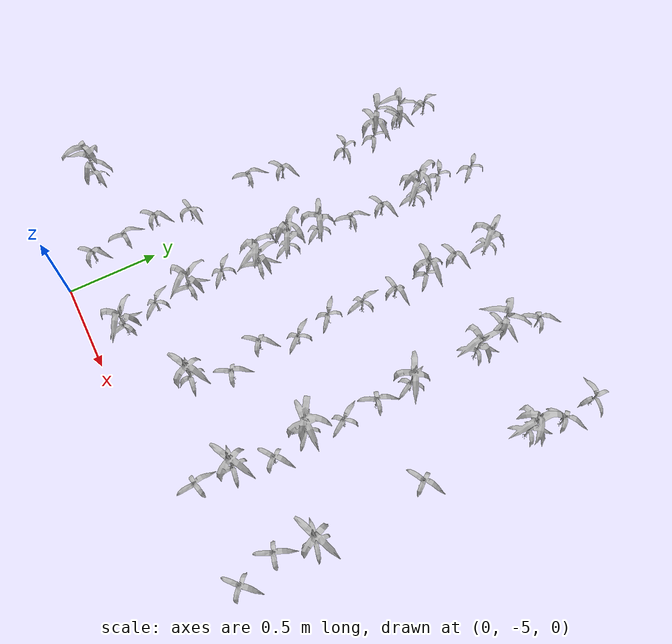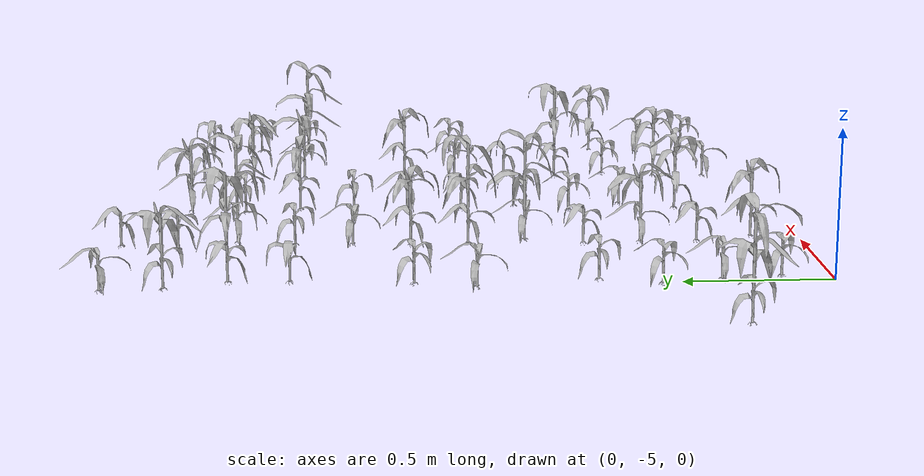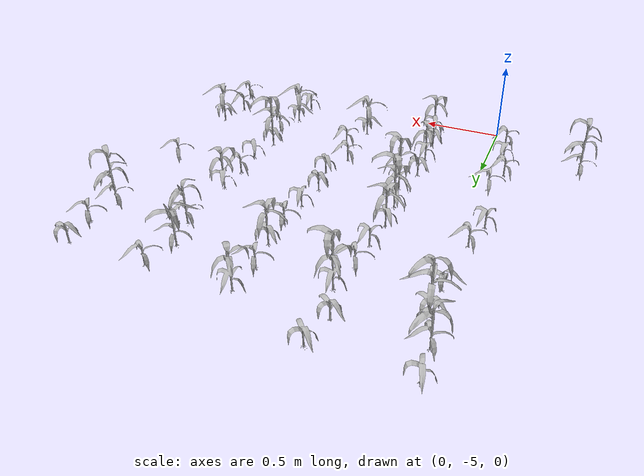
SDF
<sdf version="1.7">
 <world name="default">
  <model name="maize_-0.5794698130621695_-4.6049999999999995">
   <static>1</static>
   <link name="link">
    <inertial>
     <mass>0.2</mass>
     <inertia>
      <ixx>0.166667</ixx>
      <ixy>0</ixy>
      <ixz>0</ixz>
      <iyy>0.166667</iyy>
      <iyz>0</iyz>
      <izz>0.166667</izz>
     </inertia>
    </inertial>
    <collision name="collision">
     <geometry><mesh><uri>model://corn_5/meshes/corn.dae</uri><scale>0.25 0.25 0.25</scale></mesh></geometry>
     <surface>
      <friction><ode><mu>0</mu><mu2>0</mu2></ode></friction>
      <contact><ode><kp>0</kp><kd>0</kd><max_vel>0</max_vel><min_depth>0.002</min_depth></ode></contact>
     </surface>
    </collision>
    <visual name="visual">
     <geometry><mesh><uri>model://corn_5/meshes/corn.dae</uri><scale>0.25 0.25 0.25</scale></mesh></geometry>
    </visual>
    <velocity_decay><linear>0</linear><angular>0</angular></velocity_decay>
   </link>
   <pose>-0.57947 -4.605 0.05 0 -0 0.226514</pose>
  </model>
  <model name="maize_-0.08947248163694532_-4.8">
   <static>1</static>
   <link name="link">
    <inertial>
     <mass>0.2</mass>
     <inertia>
      <ixx>0.166667</ixx>
      <ixy>0</ixy>
      <ixz>0</ixz>
      <iyy>0.166667</iyy>
      <iyz>0</iyz>
      <izz>0.166667</izz>
     </inertia>
    </inertial>
    <collision name="collision">
     <geometry><mesh><uri>model://corn_3/meshes/corn.dae</uri><scale>0.25 0.25 0.25</scale></mesh></geometry>
     <surface>
      <friction><ode><mu>0</mu><mu2>0</mu2></ode></friction>
      <contact><ode><kp>0</kp><kd>0</kd><max_vel>0</max_vel><min_depth>0.002</min_depth></ode></contact>
     </surface>
    </collision>
    <visual name="visual">
     <geometry><mesh><uri>model://corn_3/meshes/corn.dae</uri><scale>0.25 0.25 0.25</scale></mesh></geometry>
    </visual>
    <velocity_decay><linear>0</linear><angular>0</angular></velocity_decay>
   </link>
   <pose>-0.089472 -4.8 0.05 0 -0 0.856689</pose>
  </model>
  <model name="maize_-0.11369995259795779_-4.6049999999999995">
   <static>1</static>
   <link name="link">
    <inertial>
     <mass>0.2</mass>
     <inertia>
      <ixx>0.166667</ixx>
      <ixy>0</ixy>
      <ixz>0</ixz>
      <iyy>0.166667</iyy>
      <iyz>0</iyz>
      <izz>0.166667</izz>
     </inertia>
    </inertial>
    <collision name="collision">
     <geometry><mesh><uri>model://corn_3/meshes/corn.dae</uri><scale>0.25 0.25 0.25</scale></mesh></geometry>
     <surface>
      <friction><ode><mu>0</mu><mu2>0</mu2></ode></friction>
      <contact><ode><kp>0</kp><kd>0</kd><max_vel>0</max_vel><min_depth>0.002</min_depth></ode></contact>
     </surface>
    </collision>
    <visual name="visual">
     <geometry><mesh><uri>model://corn_3/meshes/corn.dae</uri><scale>0.25 0.25 0.25</scale></mesh></geometry>
    </visual>
    <velocity_decay><linear>0</linear><angular>0</angular></velocity_decay>
   </link>
   <pose>-0.1137 -4.605 0.05 0 -0 1.52958</pose>
  </model>
  <model name="maize_-0.15480909226453513_-4.41">
   <static>1</static>
   <link name="link">
    <inertial>
     <mass>0.2</mass>
     <inertia>
      <ixx>0.166667</ixx>
      <ixy>0</ixy>
      <ixz>0</ixz>
      <iyy>0.166667</iyy>
      <iyz>0</iyz>
      <izz>0.166667</izz>
     </inertia>
    </inertial>
    <collision name="collision">
     <geometry><mesh><uri>model://corn_3/meshes/corn.dae</uri><scale>0.25 0.25 0.25</scale></mesh></geometry>
     <surface>
      <friction><ode><mu>0</mu><mu2>0</mu2></ode></friction>
      <contact><ode><kp>0</kp><kd>0</kd><max_vel>0</max_vel><min_depth>0.002</min_depth></ode></contact>
     </surface>
    </collision>
    <visual name="visual">
     <geometry><mesh><uri>model://corn_3/meshes/corn.dae</uri><scale>0.25 0.25 0.25</scale></mesh></geometry>
    </visual>
    <velocity_decay><linear>0</linear><angular>0</angular></velocity_decay>
   </link>
   <pose>-0.154809 -4.41 0.05 0 -0 0.833471</pose>
  </model>
  <model name="maize_-0.09893499277880449_-4.215">
   <static>1</static>
   <link name="link">
    <inertial>
     <mass>0.2</mass>
     <inertia>
      <ixx>0.166667</ixx>
      <ixy>0</ixy>
      <ixz>0</ixz>
      <iyy>0.166667</iyy>
      <iyz>0</iyz>
      <izz>0.166667</izz>
     </inertia>
    </inertial>
    <collision name="collision">
     <geometry><mesh><uri>model://corn_3/meshes/corn.dae</uri><scale>0.25 0.25 0.25</scale></mesh></geometry>
     <surface>
      <friction><ode><mu>0</mu><mu2>0</mu2></ode></friction>
      <contact><ode><kp>0</kp><kd>0</kd><max_vel>0</max_vel><min_depth>0.002</min_depth></ode></contact>
     </surface>
    </collision>
    <visual name="visual">
     <geometry><mesh><uri>model://corn_3/meshes/corn.dae</uri><scale>0.25 0.25 0.25</scale></mesh></geometry>
    </visual>
    <velocity_decay><linear>0</linear><angular>0</angular></velocity_decay>
   </link>
   <pose>-0.098935 -4.215 0.05 0 -0 0.241516</pose>
  </model>
  <model name="maize_-0.16683589748353803_-3.8249999999999997">
   <static>1</static>
   <link name="link">
    <inertial>
     <mass>0.2</mass>
     <inertia>
      <ixx>0.166667</ixx>
      <ixy>0</ixy>
      <ixz>0</ixz>
      <iyy>0.166667</iyy>
      <iyz>0</iyz>
      <izz>0.166667</izz>
     </inertia>
    </inertial>
    <collision name="collision">
     <geometry><mesh><uri>model://corn_3/meshes/corn.dae</uri><scale>0.25 0.25 0.25</scale></mesh></geometry>
     <surface>
      <friction><ode><mu>0</mu><mu2>0</mu2></ode></friction>
      <contact><ode><kp>0</kp><kd>0</kd><max_vel>0</max_vel><min_depth>0.002</min_depth></ode></contact>
     </surface>
    </collision>
    <visual name="visual">
     <geometry><mesh><uri>model://corn_3/meshes/corn.dae</uri><scale>0.25 0.25 0.25</scale></mesh></geometry>
    </visual>
    <velocity_decay><linear>0</linear><angular>0</angular></velocity_decay>
   </link>
   <pose>-0.166836 -3.825 0.05 0 -0 1.34205</pose>
  </model>
  <model name="maize_-0.12233010074013884_-3.63">
   <static>1</static>
   <link name="link">
    <inertial>
     <mass>0.2</mass>
     <inertia>
      <ixx>0.166667</ixx>
      <ixy>0</ixy>
      <ixz>0</ixz>
      <iyy>0.166667</iyy>
      <iyz>0</iyz>
      <izz>0.166667</izz>
     </inertia>
    </inertial>
    <collision name="collision">
     <geometry><mesh><uri>model://corn_3/meshes/corn.dae</uri><scale>0.25 0.25 0.25</scale></mesh></geometry>
     <surface>
      <friction><ode><mu>0</mu><mu2>0</mu2></ode></friction>
      <contact><ode><kp>0</kp><kd>0</kd><max_vel>0</max_vel><min_depth>0.002</min_depth></ode></contact>
     </surface>
    </collision>
    <visual name="visual">
     <geometry><mesh><uri>model://corn_3/meshes/corn.dae</uri><scale>0.25 0.25 0.25</scale></mesh></geometry>
    </visual>
    <velocity_decay><linear>0</linear><angular>0</angular></velocity_decay>
   </link>
   <pose>-0.12233 -3.63 0.05 0 -0 0.638561</pose>
  </model>
  <model name="maize_-0.08624315046598344_-3.2399999999999998">
   <static>1</static>
   <link name="link">
    <inertial>
     <mass>0.2</mass>
     <inertia>
      <ixx>0.166667</ixx>
      <ixy>0</ixy>
      <ixz>0</ixz>
      <iyy>0.166667</iyy>
      <iyz>0</iyz>
      <izz>0.166667</izz>
     </inertia>
    </inertial>
    <collision name="collision">
     <geometry><mesh><uri>model://corn_3/meshes/corn.dae</uri><scale>0.25 0.25 0.25</scale></mesh></geometry>
     <surface>
      <friction><ode><mu>0</mu><mu2>0</mu2></ode></friction>
      <contact><ode><kp>0</kp><kd>0</kd><max_vel>0</max_vel><min_depth>0.002</min_depth></ode></contact>
     </surface>
    </collision>
    <visual name="visual">
     <geometry><mesh><uri>model://corn_3/meshes/corn.dae</uri><scale>0.25 0.25 0.25</scale></mesh></geometry>
    </visual>
    <velocity_decay><linear>0</linear><angular>0</angular></velocity_decay>
   </link>
   <pose>-0.086243 -3.24 0.05 0 -0 3.11253</pose>
  </model>
  <model name="maize_-0.0808394201157531_-3.045">
   <static>1</static>
   <link name="link">
    <inertial>
     <mass>0.2</mass>
     <inertia>
      <ixx>0.166667</ixx>
      <ixy>0</ixy>
      <ixz>0</ixz>
      <iyy>0.166667</iyy>
      <iyz>0</iyz>
      <izz>0.166667</izz>
     </inertia>
    </inertial>
    <collision name="collision">
     <geometry><mesh><uri>model://corn_5/meshes/corn.dae</uri><scale>0.25 0.25 0.25</scale></mesh></geometry>
     <surface>
      <friction><ode><mu>0</mu><mu2>0</mu2></ode></friction>
      <contact><ode><kp>0</kp><kd>0</kd><max_vel>0</max_vel><min_depth>0.002</min_depth></ode></contact>
     </surface>
    </collision>
    <visual name="visual">
     <geometry><mesh><uri>model://corn_5/meshes/corn.dae</uri><scale>0.25 0.25 0.25</scale></mesh></geometry>
    </visual>
    <velocity_decay><linear>0</linear><angular>0</angular></velocity_decay>
   </link>
   <pose>-0.080839 -3.045 0.05 0 -0 2.70748</pose>
  </model>
  <model name="maize_-0.14278858493482638_-2.8499999999999996">
   <static>1</static>
   <link name="link">
    <inertial>
     <mass>0.2</mass>
     <inertia>
      <ixx>0.166667</ixx>
      <ixy>0</ixy>
      <ixz>0</ixz>
      <iyy>0.166667</iyy>
      <iyz>0</iyz>
      <izz>0.166667</izz>
     </inertia>
    </inertial>
    <collision name="collision">
     <geometry><mesh><uri>model://corn_4/meshes/corn.dae</uri><scale>0.25 0.25 0.25</scale></mesh></geometry>
     <surface>
      <friction><ode><mu>0</mu><mu2>0</mu2></ode></friction>
      <contact><ode><kp>0</kp><kd>0</kd><max_vel>0</max_vel><min_depth>0.002</min_depth></ode></contact>
     </surface>
    </collision>
    <visual name="visual">
     <geometry><mesh><uri>model://corn_4/meshes/corn.dae</uri><scale>0.25 0.25 0.25</scale></mesh></geometry>
    </visual>
    <velocity_decay><linear>0</linear><angular>0</angular></velocity_decay>
   </link>
   <pose>-0.142789 -2.85 0.05 0 -0 0.538339</pose>
  </model>
  <model name="maize_-0.1576907734598361_-2.655">
   <static>1</static>
   <link name="link">
    <inertial>
     <mass>0.2</mass>
     <inertia>
      <ixx>0.166667</ixx>
      <ixy>0</ixy>
      <ixz>0</ixz>
      <iyy>0.166667</iyy>
      <iyz>0</iyz>
      <izz>0.166667</izz>
     </inertia>
    </inertial>
    <collision name="collision">
     <geometry><mesh><uri>model://corn_3/meshes/corn.dae</uri><scale>0.25 0.25 0.25</scale></mesh></geometry>
     <surface>
      <friction><ode><mu>0</mu><mu2>0</mu2></ode></friction>
      <contact><ode><kp>0</kp><kd>0</kd><max_vel>0</max_vel><min_depth>0.002</min_depth></ode></contact>
     </surface>
    </collision>
    <visual name="visual">
     <geometry><mesh><uri>model://corn_3/meshes/corn.dae</uri><scale>0.25 0.25 0.25</scale></mesh></geometry>
    </visual>
    <velocity_decay><linear>0</linear><angular>0</angular></velocity_decay>
   </link>
   <pose>-0.157691 -2.655 0.05 0 -0 1.91088</pose>
  </model>
  <model name="maize_0.4052160722732578_-4.8">
   <static>1</static>
   <link name="link">
    <inertial>
     <mass>0.2</mass>
     <inertia>
      <ixx>0.166667</ixx>
      <ixy>0</ixy>
      <ixz>0</ixz>
      <iyy>0.166667</iyy>
      <iyz>0</iyz>
      <izz>0.166667</izz>
     </inertia>
    </inertial>
    <collision name="collision">
     <geometry><mesh><uri>model://corn_4/meshes/corn.dae</uri><scale>0.25 0.25 0.25</scale></mesh></geometry>
     <surface>
      <friction><ode><mu>0</mu><mu2>0</mu2></ode></friction>
      <contact><ode><kp>0</kp><kd>0</kd><max_vel>0</max_vel><min_depth>0.002</min_depth></ode></contact>
     </surface>
    </collision>
    <visual name="visual">
     <geometry><mesh><uri>model://corn_4/meshes/corn.dae</uri><scale>0.25 0.25 0.25</scale></mesh></geometry>
    </visual>
    <velocity_decay><linear>0</linear><angular>0</angular></velocity_decay>
   </link>
   <pose>0.405216 -4.8 0.05 0 -0 1.9423</pose>
  </model>
  <model name="maize_0.35607902720396356_-4.6049999999999995">
   <static>1</static>
   <link name="link">
    <inertial>
     <mass>0.2</mass>
     <inertia>
      <ixx>0.166667</ixx>
      <ixy>0</ixy>
      <ixz>0</ixz>
      <iyy>0.166667</iyy>
      <iyz>0</iyz>
      <izz>0.166667</izz>
     </inertia>
    </inertial>
    <collision name="collision">
     <geometry><mesh><uri>model://corn_3/meshes/corn.dae</uri><scale>0.25 0.25 0.25</scale></mesh></geometry>
     <surface>
      <friction><ode><mu>0</mu><mu2>0</mu2></ode></friction>
      <contact><ode><kp>0</kp><kd>0</kd><max_vel>0</max_vel><min_depth>0.002</min_depth></ode></contact>
     </surface>
    </collision>
    <visual name="visual">
     <geometry><mesh><uri>model://corn_3/meshes/corn.dae</uri><scale>0.25 0.25 0.25</scale></mesh></geometry>
    </visual>
    <velocity_decay><linear>0</linear><angular>0</angular></velocity_decay>
   </link>
   <pose>0.356079 -4.605 0.05 0 -0 2.32918</pose>
  </model>
  <model name="maize_0.35064531900201473_-4.41">
   <static>1</static>
   <link name="link">
    <inertial>
     <mass>0.2</mass>
     <inertia>
      <ixx>0.166667</ixx>
      <ixy>0</ixy>
      <ixz>0</ixz>
      <iyy>0.166667</iyy>
      <iyz>0</iyz>
      <izz>0.166667</izz>
     </inertia>
    </inertial>
    <collision name="collision">
     <geometry><mesh><uri>model://corn_4/meshes/corn.dae</uri><scale>0.25 0.25 0.25</scale></mesh></geometry>
     <surface>
      <friction><ode><mu>0</mu><mu2>0</mu2></ode></friction>
      <contact><ode><kp>0</kp><kd>0</kd><max_vel>0</max_vel><min_depth>0.002</min_depth></ode></contact>
     </surface>
    </collision>
    <visual name="visual">
     <geometry><mesh><uri>model://corn_4/meshes/corn.dae</uri><scale>0.25 0.25 0.25</scale></mesh></geometry>
    </visual>
    <velocity_decay><linear>0</linear><angular>0</angular></velocity_decay>
   </link>
   <pose>0.350645 -4.41 0.05 0 -0 1.54455</pose>
  </model>
  <model name="maize_0.3405834351974031_-4.215">
   <static>1</static>
   <link name="link">
    <inertial>
     <mass>0.2</mass>
     <inertia>
      <ixx>0.166667</ixx>
      <ixy>0</ixy>
      <ixz>0</ixz>
      <iyy>0.166667</iyy>
      <iyz>0</iyz>
      <izz>0.166667</izz>
     </inertia>
    </inertial>
    <collision name="collision">
     <geometry><mesh><uri>model://corn_3/meshes/corn.dae</uri><scale>0.25 0.25 0.25</scale></mesh></geometry>
     <surface>
      <friction><ode><mu>0</mu><mu2>0</mu2></ode></friction>
      <contact><ode><kp>0</kp><kd>0</kd><max_vel>0</max_vel><min_depth>0.002</min_depth></ode></contact>
     </surface>
    </collision>
    <visual name="visual">
     <geometry><mesh><uri>model://corn_3/meshes/corn.dae</uri><scale>0.25 0.25 0.25</scale></mesh></geometry>
    </visual>
    <velocity_decay><linear>0</linear><angular>0</angular></velocity_decay>
   </link>
   <pose>0.340583 -4.215 0.05 0 -0 2.492</pose>
  </model>
  <model name="maize_0.39697595780651246_-4.02">
   <static>1</static>
   <link name="link">
    <inertial>
     <mass>0.2</mass>
     <inertia>
      <ixx>0.166667</ixx>
      <ixy>0</ixy>
      <ixz>0</ixz>
      <iyy>0.166667</iyy>
      <iyz>0</iyz>
      <izz>0.166667</izz>
     </inertia>
    </inertial>
    <collision name="collision">
     <geometry><mesh><uri>model://corn_5/meshes/corn.dae</uri><scale>0.25 0.25 0.25</scale></mesh></geometry>
     <surface>
      <friction><ode><mu>0</mu><mu2>0</mu2></ode></friction>
      <contact><ode><kp>0</kp><kd>0</kd><max_vel>0</max_vel><min_depth>0.002</min_depth></ode></contact>
     </surface>
    </collision>
    <visual name="visual">
     <geometry><mesh><uri>model://corn_5/meshes/corn.dae</uri><scale>0.25 0.25 0.25</scale></mesh></geometry>
    </visual>
    <velocity_decay><linear>0</linear><angular>0</angular></velocity_decay>
   </link>
   <pose>0.396976 -4.02 0.05 0 -0 1.28195</pose>
  </model>
  <model name="maize_0.3591632939717429_-3.8249999999999997">
   <static>1</static>
   <link name="link">
    <inertial>
     <mass>0.2</mass>
     <inertia>
      <ixx>0.166667</ixx>
      <ixy>0</ixy>
      <ixz>0</ixz>
      <iyy>0.166667</iyy>
      <iyz>0</iyz>
      <izz>0.166667</izz>
     </inertia>
    </inertial>
    <collision name="collision">
     <geometry><mesh><uri>model://corn_5/meshes/corn.dae</uri><scale>0.25 0.25 0.25</scale></mesh></geometry>
     <surface>
      <friction><ode><mu>0</mu><mu2>0</mu2></ode></friction>
      <contact><ode><kp>0</kp><kd>0</kd><max_vel>0</max_vel><min_depth>0.002</min_depth></ode></contact>
     </surface>
    </collision>
    <visual name="visual">
     <geometry><mesh><uri>model://corn_5/meshes/corn.dae</uri><scale>0.25 0.25 0.25</scale></mesh></geometry>
    </visual>
    <velocity_decay><linear>0</linear><angular>0</angular></velocity_decay>
   </link>
   <pose>0.359163 -3.825 0.05 0 -0 2.06548</pose>
  </model>
  <model name="maize_0.34223553518957534_-3.63">
   <static>1</static>
   <link name="link">
    <inertial>
     <mass>0.2</mass>
     <inertia>
      <ixx>0.166667</ixx>
      <ixy>0</ixy>
      <ixz>0</ixz>
      <iyy>0.166667</iyy>
      <iyz>0</iyz>
      <izz>0.166667</izz>
     </inertia>
    </inertial>
    <collision name="collision">
     <geometry><mesh><uri>model://corn_4/meshes/corn.dae</uri><scale>0.25 0.25 0.25</scale></mesh></geometry>
     <surface>
      <friction><ode><mu>0</mu><mu2>0</mu2></ode></friction>
      <contact><ode><kp>0</kp><kd>0</kd><max_vel>0</max_vel><min_depth>0.002</min_depth></ode></contact>
     </surface>
    </collision>
    <visual name="visual">
     <geometry><mesh><uri>model://corn_4/meshes/corn.dae</uri><scale>0.25 0.25 0.25</scale></mesh></geometry>
    </visual>
    <velocity_decay><linear>0</linear><angular>0</angular></velocity_decay>
   </link>
   <pose>0.342236 -3.63 0.05 0 -0 2.2004</pose>
  </model>
  <model name="maize_0.3617129465408765_-3.4349999999999996">
   <static>1</static>
   <link name="link">
    <inertial>
     <mass>0.2</mass>
     <inertia>
      <ixx>0.166667</ixx>
      <ixy>0</ixy>
      <ixz>0</ixz>
      <iyy>0.166667</iyy>
      <iyz>0</iyz>
      <izz>0.166667</izz>
     </inertia>
    </inertial>
    <collision name="collision">
     <geometry><mesh><uri>model://corn_3/meshes/corn.dae</uri><scale>0.25 0.25 0.25</scale></mesh></geometry>
     <surface>
      <friction><ode><mu>0</mu><mu2>0</mu2></ode></friction>
      <contact><ode><kp>0</kp><kd>0</kd><max_vel>0</max_vel><min_depth>0.002</min_depth></ode></contact>
     </surface>
    </collision>
    <visual name="visual">
     <geometry><mesh><uri>model://corn_3/meshes/corn.dae</uri><scale>0.25 0.25 0.25</scale></mesh></geometry>
    </visual>
    <velocity_decay><linear>0</linear><angular>0</angular></velocity_decay>
   </link>
   <pose>0.361713 -3.435 0.05 0 -0 1.33624</pose>
  </model>
  <model name="maize_0.3660917582938566_-3.2399999999999998">
   <static>1</static>
   <link name="link">
    <inertial>
     <mass>0.2</mass>
     <inertia>
      <ixx>0.166667</ixx>
      <ixy>0</ixy>
      <ixz>0</ixz>
      <iyy>0.166667</iyy>
      <iyz>0</iyz>
      <izz>0.166667</izz>
     </inertia>
    </inertial>
    <collision name="collision">
     <geometry><mesh><uri>model://corn_3/meshes/corn.dae</uri><scale>0.25 0.25 0.25</scale></mesh></geometry>
     <surface>
      <friction><ode><mu>0</mu><mu2>0</mu2></ode></friction>
      <contact><ode><kp>0</kp><kd>0</kd><max_vel>0</max_vel><min_depth>0.002</min_depth></ode></contact>
     </surface>
    </collision>
    <visual name="visual">
     <geometry><mesh><uri>model://corn_3/meshes/corn.dae</uri><scale>0.25 0.25 0.25</scale></mesh></geometry>
    </visual>
    <velocity_decay><linear>0</linear><angular>0</angular></velocity_decay>
   </link>
   <pose>0.366092 -3.24 0.05 0 -0 0.439807</pose>
  </model>
  <model name="maize_0.40253141256624503_-3.045">
   <static>1</static>
   <link name="link">
    <inertial>
     <mass>0.2</mass>
     <inertia>
      <ixx>0.166667</ixx>
      <ixy>0</ixy>
      <ixz>0</ixz>
      <iyy>0.166667</iyy>
      <iyz>0</iyz>
      <izz>0.166667</izz>
     </inertia>
    </inertial>
    <collision name="collision">
     <geometry><mesh><uri>model://corn_5/meshes/corn.dae</uri><scale>0.25 0.25 0.25</scale></mesh></geometry>
     <surface>
      <friction><ode><mu>0</mu><mu2>0</mu2></ode></friction>
      <contact><ode><kp>0</kp><kd>0</kd><max_vel>0</max_vel><min_depth>0.002</min_depth></ode></contact>
     </surface>
    </collision>
    <visual name="visual">
     <geometry><mesh><uri>model://corn_5/meshes/corn.dae</uri><scale>0.25 0.25 0.25</scale></mesh></geometry>
    </visual>
    <velocity_decay><linear>0</linear><angular>0</angular></velocity_decay>
   </link>
   <pose>0.402531 -3.045 0.05 0 -0 1.71098</pose>
  </model>
  <model name="maize_0.33299519488374046_-2.8499999999999996">
   <static>1</static>
   <link name="link">
    <inertial>
     <mass>0.2</mass>
     <inertia>
      <ixx>0.166667</ixx>
      <ixy>0</ixy>
      <ixz>0</ixz>
      <iyy>0.166667</iyy>
      <iyz>0</iyz>
      <izz>0.166667</izz>
     </inertia>
    </inertial>
    <collision name="collision">
     <geometry><mesh><uri>model://corn_3/meshes/corn.dae</uri><scale>0.25 0.25 0.25</scale></mesh></geometry>
     <surface>
      <friction><ode><mu>0</mu><mu2>0</mu2></ode></friction>
      <contact><ode><kp>0</kp><kd>0</kd><max_vel>0</max_vel><min_depth>0.002</min_depth></ode></contact>
     </surface>
    </collision>
    <visual name="visual">
     <geometry><mesh><uri>model://corn_3/meshes/corn.dae</uri><scale>0.25 0.25 0.25</scale></mesh></geometry>
    </visual>
    <velocity_decay><linear>0</linear><angular>0</angular></velocity_decay>
   </link>
   <pose>0.332995 -2.85 0.05 0 -0 2.62345</pose>
  </model>
  <model name="maize_0.37378861474626657_-2.655">
   <static>1</static>
   <link name="link">
    <inertial>
     <mass>0.2</mass>
     <inertia>
      <ixx>0.166667</ixx>
      <ixy>0</ixy>
      <ixz>0</ixz>
      <iyy>0.166667</iyy>
      <iyz>0</iyz>
      <izz>0.166667</izz>
     </inertia>
    </inertial>
    <collision name="collision">
     <geometry><mesh><uri>model://corn_3/meshes/corn.dae</uri><scale>0.25 0.25 0.25</scale></mesh></geometry>
     <surface>
      <friction><ode><mu>0</mu><mu2>0</mu2></ode></friction>
      <contact><ode><kp>0</kp><kd>0</kd><max_vel>0</max_vel><min_depth>0.002</min_depth></ode></contact>
     </surface>
    </collision>
    <visual name="visual">
     <geometry><mesh><uri>model://corn_3/meshes/corn.dae</uri><scale>0.25 0.25 0.25</scale></mesh></geometry>
    </visual>
    <velocity_decay><linear>0</linear><angular>0</angular></velocity_decay>
   </link>
   <pose>0.373789 -2.655 0.05 0 -0 2.4026</pose>
  </model>
  <model name="maize_0.823994894856676_-4.6049999999999995">
   <static>1</static>
   <link name="link">
    <inertial>
     <mass>0.2</mass>
     <inertia>
      <ixx>0.166667</ixx>
      <ixy>0</ixy>
      <ixz>0</ixz>
      <iyy>0.166667</iyy>
      <iyz>0</iyz>
      <izz>0.166667</izz>
     </inertia>
    </inertial>
    <collision name="collision">
     <geometry><mesh><uri>model://corn_4/meshes/corn.dae</uri><scale>0.25 0.25 0.25</scale></mesh></geometry>
     <surface>
      <friction><ode><mu>0</mu><mu2>0</mu2></ode></friction>
      <contact><ode><kp>0</kp><kd>0</kd><max_vel>0</max_vel><min_depth>0.002</min_depth></ode></contact>
     </surface>
    </collision>
    <visual name="visual">
     <geometry><mesh><uri>model://corn_4/meshes/corn.dae</uri><scale>0.25 0.25 0.25</scale></mesh></geometry>
    </visual>
    <velocity_decay><linear>0</linear><angular>0</angular></velocity_decay>
   </link>
   <pose>0.823995 -4.605 0.05 0 -0 3.07718</pose>
  </model>
  <model name="maize_0.8966082899529052_-4.41">
   <static>1</static>
   <link name="link">
    <inertial>
     <mass>0.2</mass>
     <inertia>
      <ixx>0.166667</ixx>
      <ixy>0</ixy>
      <ixz>0</ixz>
      <iyy>0.166667</iyy>
      <iyz>0</iyz>
      <izz>0.166667</izz>
     </inertia>
    </inertial>
    <collision name="collision">
     <geometry><mesh><uri>model://corn_3/meshes/corn.dae</uri><scale>0.25 0.25 0.25</scale></mesh></geometry>
     <surface>
      <friction><ode><mu>0</mu><mu2>0</mu2></ode></friction>
      <contact><ode><kp>0</kp><kd>0</kd><max_vel>0</max_vel><min_depth>0.002</min_depth></ode></contact>
     </surface>
    </collision>
    <visual name="visual">
     <geometry><mesh><uri>model://corn_3/meshes/corn.dae</uri><scale>0.25 0.25 0.25</scale></mesh></geometry>
    </visual>
    <velocity_decay><linear>0</linear><angular>0</angular></velocity_decay>
   </link>
   <pose>0.896608 -4.41 0.05 0 -0 1.1486</pose>
  </model>
  <model name="maize_0.8075794510545363_-4.215">
   <static>1</static>
   <link name="link">
    <inertial>
     <mass>0.2</mass>
     <inertia>
      <ixx>0.166667</ixx>
      <ixy>0</ixy>
      <ixz>0</ixz>
      <iyy>0.166667</iyy>
      <iyz>0</iyz>
      <izz>0.166667</izz>
     </inertia>
    </inertial>
    <collision name="collision">
     <geometry><mesh><uri>model://corn_3/meshes/corn.dae</uri><scale>0.25 0.25 0.25</scale></mesh></geometry>
     <surface>
      <friction><ode><mu>0</mu><mu2>0</mu2></ode></friction>
      <contact><ode><kp>0</kp><kd>0</kd><max_vel>0</max_vel><min_depth>0.002</min_depth></ode></contact>
     </surface>
    </collision>
    <visual name="visual">
     <geometry><mesh><uri>model://corn_3/meshes/corn.dae</uri><scale>0.25 0.25 0.25</scale></mesh></geometry>
    </visual>
    <velocity_decay><linear>0</linear><angular>0</angular></velocity_decay>
   </link>
   <pose>0.807579 -4.215 0.05 0 -0 0.900839</pose>
  </model>
  <model name="maize_0.8754517404091673_-4.02">
   <static>1</static>
   <link name="link">
    <inertial>
     <mass>0.2</mass>
     <inertia>
      <ixx>0.166667</ixx>
      <ixy>0</ixy>
      <ixz>0</ixz>
      <iyy>0.166667</iyy>
      <iyz>0</iyz>
      <izz>0.166667</izz>
     </inertia>
    </inertial>
    <collision name="collision">
     <geometry><mesh><uri>model://corn_3/meshes/corn.dae</uri><scale>0.25 0.25 0.25</scale></mesh></geometry>
     <surface>
      <friction><ode><mu>0</mu><mu2>0</mu2></ode></friction>
      <contact><ode><kp>0</kp><kd>0</kd><max_vel>0</max_vel><min_depth>0.002</min_depth></ode></contact>
     </surface>
    </collision>
    <visual name="visual">
     <geometry><mesh><uri>model://corn_3/meshes/corn.dae</uri><scale>0.25 0.25 0.25</scale></mesh></geometry>
    </visual>
    <velocity_decay><linear>0</linear><angular>0</angular></velocity_decay>
   </link>
   <pose>0.875452 -4.02 0.05 0 -0 2.31869</pose>
  </model>
  <model name="maize_0.8352001727285957_-3.8249999999999997">
   <static>1</static>
   <link name="link">
    <inertial>
     <mass>0.2</mass>
     <inertia>
      <ixx>0.166667</ixx>
      <ixy>0</ixy>
      <ixz>0</ixz>
      <iyy>0.166667</iyy>
      <iyz>0</iyz>
      <izz>0.166667</izz>
     </inertia>
    </inertial>
    <collision name="collision">
     <geometry><mesh><uri>model://corn_3/meshes/corn.dae</uri><scale>0.25 0.25 0.25</scale></mesh></geometry>
     <surface>
      <friction><ode><mu>0</mu><mu2>0</mu2></ode></friction>
      <contact><ode><kp>0</kp><kd>0</kd><max_vel>0</max_vel><min_depth>0.002</min_depth></ode></contact>
     </surface>
    </collision>
    <visual name="visual">
     <geometry><mesh><uri>model://corn_3/meshes/corn.dae</uri><scale>0.25 0.25 0.25</scale></mesh></geometry>
    </visual>
    <velocity_decay><linear>0</linear><angular>0</angular></velocity_decay>
   </link>
   <pose>0.8352 -3.825 0.05 0 -0 2.53669</pose>
  </model>
  <model name="maize_0.8537061088090849_-3.63">
   <static>1</static>
   <link name="link">
    <inertial>
     <mass>0.2</mass>
     <inertia>
      <ixx>0.166667</ixx>
      <ixy>0</ixy>
      <ixz>0</ixz>
      <iyy>0.166667</iyy>
      <iyz>0</iyz>
      <izz>0.166667</izz>
     </inertia>
    </inertial>
    <collision name="collision">
     <geometry><mesh><uri>model://corn_3/meshes/corn.dae</uri><scale>0.25 0.25 0.25</scale></mesh></geometry>
     <surface>
      <friction><ode><mu>0</mu><mu2>0</mu2></ode></friction>
      <contact><ode><kp>0</kp><kd>0</kd><max_vel>0</max_vel><min_depth>0.002</min_depth></ode></contact>
     </surface>
    </collision>
    <visual name="visual">
     <geometry><mesh><uri>model://corn_3/meshes/corn.dae</uri><scale>0.25 0.25 0.25</scale></mesh></geometry>
    </visual>
    <velocity_decay><linear>0</linear><angular>0</angular></velocity_decay>
   </link>
   <pose>0.853706 -3.63 0.05 0 -0 1.8607</pose>
  </model>
  <model name="maize_0.8646862531493678_-3.4349999999999996">
   <static>1</static>
   <link name="link">
    <inertial>
     <mass>0.2</mass>
     <inertia>
      <ixx>0.166667</ixx>
      <ixy>0</ixy>
      <ixz>0</ixz>
      <iyy>0.166667</iyy>
      <iyz>0</iyz>
      <izz>0.166667</izz>
     </inertia>
    </inertial>
    <collision name="collision">
     <geometry><mesh><uri>model://corn_3/meshes/corn.dae</uri><scale>0.25 0.25 0.25</scale></mesh></geometry>
     <surface>
      <friction><ode><mu>0</mu><mu2>0</mu2></ode></friction>
      <contact><ode><kp>0</kp><kd>0</kd><max_vel>0</max_vel><min_depth>0.002</min_depth></ode></contact>
     </surface>
    </collision>
    <visual name="visual">
     <geometry><mesh><uri>model://corn_3/meshes/corn.dae</uri><scale>0.25 0.25 0.25</scale></mesh></geometry>
    </visual>
    <velocity_decay><linear>0</linear><angular>0</angular></velocity_decay>
   </link>
   <pose>0.864686 -3.435 0.05 0 -0 0.200094</pose>
  </model>
  <model name="maize_0.8611459837172941_-3.2399999999999998">
   <static>1</static>
   <link name="link">
    <inertial>
     <mass>0.2</mass>
     <inertia>
      <ixx>0.166667</ixx>
      <ixy>0</ixy>
      <ixz>0</ixz>
      <iyy>0.166667</iyy>
      <iyz>0</iyz>
      <izz>0.166667</izz>
     </inertia>
    </inertial>
    <collision name="collision">
     <geometry><mesh><uri>model://corn_4/meshes/corn.dae</uri><scale>0.25 0.25 0.25</scale></mesh></geometry>
     <surface>
      <friction><ode><mu>0</mu><mu2>0</mu2></ode></friction>
      <contact><ode><kp>0</kp><kd>0</kd><max_vel>0</max_vel><min_depth>0.002</min_depth></ode></contact>
     </surface>
    </collision>
    <visual name="visual">
     <geometry><mesh><uri>model://corn_4/meshes/corn.dae</uri><scale>0.25 0.25 0.25</scale></mesh></geometry>
    </visual>
    <velocity_decay><linear>0</linear><angular>0</angular></velocity_decay>
   </link>
   <pose>0.861146 -3.24 0.05 0 -0 2.51558</pose>
  </model>
  <model name="maize_0.8286604292650397_-3.045">
   <static>1</static>
   <link name="link">
    <inertial>
     <mass>0.2</mass>
     <inertia>
      <ixx>0.166667</ixx>
      <ixy>0</ixy>
      <ixz>0</ixz>
      <iyy>0.166667</iyy>
      <iyz>0</iyz>
      <izz>0.166667</izz>
     </inertia>
    </inertial>
    <collision name="collision">
     <geometry><mesh><uri>model://corn_3/meshes/corn.dae</uri><scale>0.25 0.25 0.25</scale></mesh></geometry>
     <surface>
      <friction><ode><mu>0</mu><mu2>0</mu2></ode></friction>
      <contact><ode><kp>0</kp><kd>0</kd><max_vel>0</max_vel><min_depth>0.002</min_depth></ode></contact>
     </surface>
    </collision>
    <visual name="visual">
     <geometry><mesh><uri>model://corn_3/meshes/corn.dae</uri><scale>0.25 0.25 0.25</scale></mesh></geometry>
    </visual>
    <velocity_decay><linear>0</linear><angular>0</angular></velocity_decay>
   </link>
   <pose>0.82866 -3.045 0.05 0 -0 0.342634</pose>
  </model>
  <model name="maize_0.8489233954027172_-2.8499999999999996">
   <static>1</static>
   <link name="link">
    <inertial>
     <mass>0.2</mass>
     <inertia>
      <ixx>0.166667</ixx>
      <ixy>0</ixy>
      <ixz>0</ixz>
      <iyy>0.166667</iyy>
      <iyz>0</iyz>
      <izz>0.166667</izz>
     </inertia>
    </inertial>
    <collision name="collision">
     <geometry><mesh><uri>model://corn_4/meshes/corn.dae</uri><scale>0.25 0.25 0.25</scale></mesh></geometry>
     <surface>
      <friction><ode><mu>0</mu><mu2>0</mu2></ode></friction>
      <contact><ode><kp>0</kp><kd>0</kd><max_vel>0</max_vel><min_depth>0.002</min_depth></ode></contact>
     </surface>
    </collision>
    <visual name="visual">
     <geometry><mesh><uri>model://corn_4/meshes/corn.dae</uri><scale>0.25 0.25 0.25</scale></mesh></geometry>
    </visual>
    <velocity_decay><linear>0</linear><angular>0</angular></velocity_decay>
   </link>
   <pose>0.848923 -2.85 0.05 0 -0 1.70042</pose>
  </model>
  <model name="maize_1.3387712677141792_-4.8">
   <static>1</static>
   <link name="link">
    <inertial>
     <mass>0.2</mass>
     <inertia>
      <ixx>0.166667</ixx>
      <ixy>0</ixy>
      <ixz>0</ixz>
      <iyy>0.166667</iyy>
      <iyz>0</iyz>
      <izz>0.166667</izz>
     </inertia>
    </inertial>
    <collision name="collision">
     <geometry><mesh><uri>model://corn_3/meshes/corn.dae</uri><scale>0.25 0.25 0.25</scale></mesh></geometry>
     <surface>
      <friction><ode><mu>0</mu><mu2>0</mu2></ode></friction>
      <contact><ode><kp>0</kp><kd>0</kd><max_vel>0</max_vel><min_depth>0.002</min_depth></ode></contact>
     </surface>
    </collision>
    <visual name="visual">
     <geometry><mesh><uri>model://corn_3/meshes/corn.dae</uri><scale>0.25 0.25 0.25</scale></mesh></geometry>
    </visual>
    <velocity_decay><linear>0</linear><angular>0</angular></velocity_decay>
   </link>
   <pose>1.33877 -4.8 0.05 0 -0 1.71237</pose>
  </model>
  <model name="maize_1.343371035516457_-4.6049999999999995">
   <static>1</static>
   <link name="link">
    <inertial>
     <mass>0.2</mass>
     <inertia>
      <ixx>0.166667</ixx>
      <ixy>0</ixy>
      <ixz>0</ixz>
      <iyy>0.166667</iyy>
      <iyz>0</iyz>
      <izz>0.166667</izz>
     </inertia>
    </inertial>
    <collision name="collision">
     <geometry><mesh><uri>model://corn_4/meshes/corn.dae</uri><scale>0.25 0.25 0.25</scale></mesh></geometry>
     <surface>
      <friction><ode><mu>0</mu><mu2>0</mu2></ode></friction>
      <contact><ode><kp>0</kp><kd>0</kd><max_vel>0</max_vel><min_depth>0.002</min_depth></ode></contact>
     </surface>
    </collision>
    <visual name="visual">
     <geometry><mesh><uri>model://corn_4/meshes/corn.dae</uri><scale>0.25 0.25 0.25</scale></mesh></geometry>
    </visual>
    <velocity_decay><linear>0</linear><angular>0</angular></velocity_decay>
   </link>
   <pose>1.34337 -4.605 0.05 0 -0 3.05818</pose>
  </model>
  <model name="maize_1.3927426462391763_-4.41">
   <static>1</static>
   <link name="link">
    <inertial>
     <mass>0.2</mass>
     <inertia>
      <ixx>0.166667</ixx>
      <ixy>0</ixy>
      <ixz>0</ixz>
      <iyy>0.166667</iyy>
      <iyz>0</iyz>
      <izz>0.166667</izz>
     </inertia>
    </inertial>
    <collision name="collision">
     <geometry><mesh><uri>model://corn_3/meshes/corn.dae</uri><scale>0.25 0.25 0.25</scale></mesh></geometry>
     <surface>
      <friction><ode><mu>0</mu><mu2>0</mu2></ode></friction>
      <contact><ode><kp>0</kp><kd>0</kd><max_vel>0</max_vel><min_depth>0.002</min_depth></ode></contact>
     </surface>
    </collision>
    <visual name="visual">
     <geometry><mesh><uri>model://corn_3/meshes/corn.dae</uri><scale>0.25 0.25 0.25</scale></mesh></geometry>
    </visual>
    <velocity_decay><linear>0</linear><angular>0</angular></velocity_decay>
   </link>
   <pose>1.39274 -4.41 0.05 0 -0 0.68743</pose>
  </model>
  <model name="maize_1.3444979448707348_-4.215">
   <static>1</static>
   <link name="link">
    <inertial>
     <mass>0.2</mass>
     <inertia>
      <ixx>0.166667</ixx>
      <ixy>0</ixy>
      <ixz>0</ixz>
      <iyy>0.166667</iyy>
      <iyz>0</iyz>
      <izz>0.166667</izz>
     </inertia>
    </inertial>
    <collision name="collision">
     <geometry><mesh><uri>model://corn_5/meshes/corn.dae</uri><scale>0.25 0.25 0.25</scale></mesh></geometry>
     <surface>
      <friction><ode><mu>0</mu><mu2>0</mu2></ode></friction>
      <contact><ode><kp>0</kp><kd>0</kd><max_vel>0</max_vel><min_depth>0.002</min_depth></ode></contact>
     </surface>
    </collision>
    <visual name="visual">
     <geometry><mesh><uri>model://corn_5/meshes/corn.dae</uri><scale>0.25 0.25 0.25</scale></mesh></geometry>
    </visual>
    <velocity_decay><linear>0</linear><angular>0</angular></velocity_decay>
   </link>
   <pose>1.3445 -4.215 0.05 0 -0 2.55636</pose>
  </model>
  <model name="maize_1.3816151585885768_-4.02">
   <static>1</static>
   <link name="link">
    <inertial>
     <mass>0.2</mass>
     <inertia>
      <ixx>0.166667</ixx>
      <ixy>0</ixy>
      <ixz>0</ixz>
      <iyy>0.166667</iyy>
      <iyz>0</iyz>
      <izz>0.166667</izz>
     </inertia>
    </inertial>
    <collision name="collision">
     <geometry><mesh><uri>model://corn_3/meshes/corn.dae</uri><scale>0.25 0.25 0.25</scale></mesh></geometry>
     <surface>
      <friction><ode><mu>0</mu><mu2>0</mu2></ode></friction>
      <contact><ode><kp>0</kp><kd>0</kd><max_vel>0</max_vel><min_depth>0.002</min_depth></ode></contact>
     </surface>
    </collision>
    <visual name="visual">
     <geometry><mesh><uri>model://corn_3/meshes/corn.dae</uri><scale>0.25 0.25 0.25</scale></mesh></geometry>
    </visual>
    <velocity_decay><linear>0</linear><angular>0</angular></velocity_decay>
   </link>
   <pose>1.38162 -4.02 0.05 0 -0 2.20424</pose>
  </model>
  <model name="maize_1.3652563935858995_-3.8249999999999997">
   <static>1</static>
   <link name="link">
    <inertial>
     <mass>0.2</mass>
     <inertia>
      <ixx>0.166667</ixx>
      <ixy>0</ixy>
      <ixz>0</ixz>
      <iyy>0.166667</iyy>
      <iyz>0</iyz>
      <izz>0.166667</izz>
     </inertia>
    </inertial>
    <collision name="collision">
     <geometry><mesh><uri>model://corn_3/meshes/corn.dae</uri><scale>0.25 0.25 0.25</scale></mesh></geometry>
     <surface>
      <friction><ode><mu>0</mu><mu2>0</mu2></ode></friction>
      <contact><ode><kp>0</kp><kd>0</kd><max_vel>0</max_vel><min_depth>0.002</min_depth></ode></contact>
     </surface>
    </collision>
    <visual name="visual">
     <geometry><mesh><uri>model://corn_3/meshes/corn.dae</uri><scale>0.25 0.25 0.25</scale></mesh></geometry>
    </visual>
    <velocity_decay><linear>0</linear><angular>0</angular></velocity_decay>
   </link>
   <pose>1.36526 -3.825 0.05 0 -0 1.19332</pose>
  </model>
  <model name="maize_1.3667499124404825_-3.63">
   <static>1</static>
   <link name="link">
    <inertial>
     <mass>0.2</mass>
     <inertia>
      <ixx>0.166667</ixx>
      <ixy>0</ixy>
      <ixz>0</ixz>
      <iyy>0.166667</iyy>
      <iyz>0</iyz>
      <izz>0.166667</izz>
     </inertia>
    </inertial>
    <collision name="collision">
     <geometry><mesh><uri>model://corn_4/meshes/corn.dae</uri><scale>0.25 0.25 0.25</scale></mesh></geometry>
     <surface>
      <friction><ode><mu>0</mu><mu2>0</mu2></ode></friction>
      <contact><ode><kp>0</kp><kd>0</kd><max_vel>0</max_vel><min_depth>0.002</min_depth></ode></contact>
     </surface>
    </collision>
    <visual name="visual">
     <geometry><mesh><uri>model://corn_4/meshes/corn.dae</uri><scale>0.25 0.25 0.25</scale></mesh></geometry>
    </visual>
    <velocity_decay><linear>0</linear><angular>0</angular></velocity_decay>
   </link>
   <pose>1.36675 -3.63 0.05 0 -0 2.10034</pose>
  </model>
  <model name="maize_1.36645035607502_-3.2399999999999998">
   <static>1</static>
   <link name="link">
    <inertial>
     <mass>0.2</mass>
     <inertia>
      <ixx>0.166667</ixx>
      <ixy>0</ixy>
      <ixz>0</ixz>
      <iyy>0.166667</iyy>
      <iyz>0</iyz>
      <izz>0.166667</izz>
     </inertia>
    </inertial>
    <collision name="collision">
     <geometry><mesh><uri>model://corn_4/meshes/corn.dae</uri><scale>0.25 0.25 0.25</scale></mesh></geometry>
     <surface>
      <friction><ode><mu>0</mu><mu2>0</mu2></ode></friction>
      <contact><ode><kp>0</kp><kd>0</kd><max_vel>0</max_vel><min_depth>0.002</min_depth></ode></contact>
     </surface>
    </collision>
    <visual name="visual">
     <geometry><mesh><uri>model://corn_4/meshes/corn.dae</uri><scale>0.25 0.25 0.25</scale></mesh></geometry>
    </visual>
    <velocity_decay><linear>0</linear><angular>0</angular></velocity_decay>
   </link>
   <pose>1.36645 -3.24 0.05 0 -0 1.08528</pose>
  </model>
  <model name="maize_1.3048777101432278_-3.045">
   <static>1</static>
   <link name="link">
    <inertial>
     <mass>0.2</mass>
     <inertia>
      <ixx>0.166667</ixx>
      <ixy>0</ixy>
      <ixz>0</ixz>
      <iyy>0.166667</iyy>
      <iyz>0</iyz>
      <izz>0.166667</izz>
     </inertia>
    </inertial>
    <collision name="collision">
     <geometry><mesh><uri>model://corn_4/meshes/corn.dae</uri><scale>0.25 0.25 0.25</scale></mesh></geometry>
     <surface>
      <friction><ode><mu>0</mu><mu2>0</mu2></ode></friction>
      <contact><ode><kp>0</kp><kd>0</kd><max_vel>0</max_vel><min_depth>0.002</min_depth></ode></contact>
     </surface>
    </collision>
    <visual name="visual">
     <geometry><mesh><uri>model://corn_4/meshes/corn.dae</uri><scale>0.25 0.25 0.25</scale></mesh></geometry>
    </visual>
    <velocity_decay><linear>0</linear><angular>0</angular></velocity_decay>
   </link>
   <pose>1.30488 -3.045 0.05 0 -0 0.217796</pose>
  </model>
  <model name="maize_1.3616647382148048_-2.8499999999999996">
   <static>1</static>
   <link name="link">
    <inertial>
     <mass>0.2</mass>
     <inertia>
      <ixx>0.166667</ixx>
      <ixy>0</ixy>
      <ixz>0</ixz>
      <iyy>0.166667</iyy>
      <iyz>0</iyz>
      <izz>0.166667</izz>
     </inertia>
    </inertial>
    <collision name="collision">
     <geometry><mesh><uri>model://corn_3/meshes/corn.dae</uri><scale>0.25 0.25 0.25</scale></mesh></geometry>
     <surface>
      <friction><ode><mu>0</mu><mu2>0</mu2></ode></friction>
      <contact><ode><kp>0</kp><kd>0</kd><max_vel>0</max_vel><min_depth>0.002</min_depth></ode></contact>
     </surface>
    </collision>
    <visual name="visual">
     <geometry><mesh><uri>model://corn_3/meshes/corn.dae</uri><scale>0.25 0.25 0.25</scale></mesh></geometry>
    </visual>
    <velocity_decay><linear>0</linear><angular>0</angular></velocity_decay>
   </link>
   <pose>1.36166 -2.85 0.05 0 -0 0.972692</pose>
  </model>
  <model name="maize_1.851147421661395_-4.8">
   <static>1</static>
   <link name="link">
    <inertial>
     <mass>0.2</mass>
     <inertia>
      <ixx>0.166667</ixx>
      <ixy>0</ixy>
      <ixz>0</ixz>
      <iyy>0.166667</iyy>
      <iyz>0</iyz>
      <izz>0.166667</izz>
     </inertia>
    </inertial>
    <collision name="collision">
     <geometry><mesh><uri>model://corn_3/meshes/corn.dae</uri><scale>0.25 0.25 0.25</scale></mesh></geometry>
     <surface>
      <friction><ode><mu>0</mu><mu2>0</mu2></ode></friction>
      <contact><ode><kp>0</kp><kd>0</kd><max_vel>0</max_vel><min_depth>0.002</min_depth></ode></contact>
     </surface>
    </collision>
    <visual name="visual">
     <geometry><mesh><uri>model://corn_3/meshes/corn.dae</uri><scale>0.25 0.25 0.25</scale></mesh></geometry>
    </visual>
    <velocity_decay><linear>0</linear><angular>0</angular></velocity_decay>
   </link>
   <pose>1.85115 -4.8 0.05 0 -0 0.813048</pose>
  </model>
  <model name="maize_1.7929671026446594_-4.6049999999999995">
   <static>1</static>
   <link name="link">
    <inertial>
     <mass>0.2</mass>
     <inertia>
      <ixx>0.166667</ixx>
      <ixy>0</ixy>
      <ixz>0</ixz>
      <iyy>0.166667</iyy>
      <iyz>0</iyz>
      <izz>0.166667</izz>
     </inertia>
    </inertial>
    <collision name="collision">
     <geometry><mesh><uri>model://corn_3/meshes/corn.dae</uri><scale>0.25 0.25 0.25</scale></mesh></geometry>
     <surface>
      <friction><ode><mu>0</mu><mu2>0</mu2></ode></friction>
      <contact><ode><kp>0</kp><kd>0</kd><max_vel>0</max_vel><min_depth>0.002</min_depth></ode></contact>
     </surface>
    </collision>
    <visual name="visual">
     <geometry><mesh><uri>model://corn_3/meshes/corn.dae</uri><scale>0.25 0.25 0.25</scale></mesh></geometry>
    </visual>
    <velocity_decay><linear>0</linear><angular>0</angular></velocity_decay>
   </link>
   <pose>1.79297 -4.605 0.05 0 -0 1.22222</pose>
  </model>
  <model name="maize_1.8342361678583963_-4.41">
   <static>1</static>
   <link name="link">
    <inertial>
     <mass>0.2</mass>
     <inertia>
      <ixx>0.166667</ixx>
      <ixy>0</ixy>
      <ixz>0</ixz>
      <iyy>0.166667</iyy>
      <iyz>0</iyz>
      <izz>0.166667</izz>
     </inertia>
    </inertial>
    <collision name="collision">
     <geometry><mesh><uri>model://corn_4/meshes/corn.dae</uri><scale>0.25 0.25 0.25</scale></mesh></geometry>
     <surface>
      <friction><ode><mu>0</mu><mu2>0</mu2></ode></friction>
      <contact><ode><kp>0</kp><kd>0</kd><max_vel>0</max_vel><min_depth>0.002</min_depth></ode></contact>
     </surface>
    </collision>
    <visual name="visual">
     <geometry><mesh><uri>model://corn_4/meshes/corn.dae</uri><scale>0.25 0.25 0.25</scale></mesh></geometry>
    </visual>
    <velocity_decay><linear>0</linear><angular>0</angular></velocity_decay>
   </link>
   <pose>1.83424 -4.41 0.05 0 -0 2.96965</pose>
  </model>
  <model name="maize_1.8215775149984537_-3.8249999999999997">
   <static>1</static>
   <link name="link">
    <inertial>
     <mass>0.2</mass>
     <inertia>
      <ixx>0.166667</ixx>
      <ixy>0</ixy>
      <ixz>0</ixz>
      <iyy>0.166667</iyy>
      <iyz>0</iyz>
      <izz>0.166667</izz>
     </inertia>
    </inertial>
    <collision name="collision">
     <geometry><mesh><uri>model://corn_3/meshes/corn.dae</uri><scale>0.25 0.25 0.25</scale></mesh></geometry>
     <surface>
      <friction><ode><mu>0</mu><mu2>0</mu2></ode></friction>
      <contact><ode><kp>0</kp><kd>0</kd><max_vel>0</max_vel><min_depth>0.002</min_depth></ode></contact>
     </surface>
    </collision>
    <visual name="visual">
     <geometry><mesh><uri>model://corn_3/meshes/corn.dae</uri><scale>0.25 0.25 0.25</scale></mesh></geometry>
    </visual>
    <velocity_decay><linear>0</linear><angular>0</angular></velocity_decay>
   </link>
   <pose>1.82158 -3.825 0.05 0 -0 0.57062</pose>
  </model>
  <model name="maize_1.8447072967902733_-3.2399999999999998">
   <static>1</static>
   <link name="link">
    <inertial>
     <mass>0.2</mass>
     <inertia>
      <ixx>0.166667</ixx>
      <ixy>0</ixy>
      <ixz>0</ixz>
      <iyy>0.166667</iyy>
      <iyz>0</iyz>
      <izz>0.166667</izz>
     </inertia>
    </inertial>
    <collision name="collision">
     <geometry><mesh><uri>model://corn_5/meshes/corn.dae</uri><scale>0.25 0.25 0.25</scale></mesh></geometry>
     <surface>
      <friction><ode><mu>0</mu><mu2>0</mu2></ode></friction>
      <contact><ode><kp>0</kp><kd>0</kd><max_vel>0</max_vel><min_depth>0.002</min_depth></ode></contact>
     </surface>
    </collision>
    <visual name="visual">
     <geometry><mesh><uri>model://corn_5/meshes/corn.dae</uri><scale>0.25 0.25 0.25</scale></mesh></geometry>
    </visual>
    <velocity_decay><linear>0</linear><angular>0</angular></velocity_decay>
   </link>
   <pose>1.84471 -3.24 0.05 0 -0 1.00816</pose>
  </model>
  <model name="maize_1.873281286770799_-3.045">
   <static>1</static>
   <link name="link">
    <inertial>
     <mass>0.2</mass>
     <inertia>
      <ixx>0.166667</ixx>
      <ixy>0</ixy>
      <ixz>0</ixz>
      <iyy>0.166667</iyy>
      <iyz>0</iyz>
      <izz>0.166667</izz>
     </inertia>
    </inertial>
    <collision name="collision">
     <geometry><mesh><uri>model://corn_3/meshes/corn.dae</uri><scale>0.25 0.25 0.25</scale></mesh></geometry>
     <surface>
      <friction><ode><mu>0</mu><mu2>0</mu2></ode></friction>
      <contact><ode><kp>0</kp><kd>0</kd><max_vel>0</max_vel><min_depth>0.002</min_depth></ode></contact>
     </surface>
    </collision>
    <visual name="visual">
     <geometry><mesh><uri>model://corn_3/meshes/corn.dae</uri><scale>0.25 0.25 0.25</scale></mesh></geometry>
    </visual>
    <velocity_decay><linear>0</linear><angular>0</angular></velocity_decay>
   </link>
   <pose>1.87328 -3.045 0.05 0 -0 0.621301</pose>
  </model>
  <model name="maize_1.850716944745778_-2.8499999999999996">
   <static>1</static>
   <link name="link">
    <inertial>
     <mass>0.2</mass>
     <inertia>
      <ixx>0.166667</ixx>
      <ixy>0</ixy>
      <ixz>0</ixz>
      <iyy>0.166667</iyy>
      <iyz>0</iyz>
      <izz>0.166667</izz>
     </inertia>
    </inertial>
    <collision name="collision">
     <geometry><mesh><uri>model://corn_3/meshes/corn.dae</uri><scale>0.25 0.25 0.25</scale></mesh></geometry>
     <surface>
      <friction><ode><mu>0</mu><mu2>0</mu2></ode></friction>
      <contact><ode><kp>0</kp><kd>0</kd><max_vel>0</max_vel><min_depth>0.002</min_depth></ode></contact>
     </surface>
    </collision>
    <visual name="visual">
     <geometry><mesh><uri>model://corn_3/meshes/corn.dae</uri><scale>0.25 0.25 0.25</scale></mesh></geometry>
    </visual>
    <velocity_decay><linear>0</linear><angular>0</angular></velocity_decay>
   </link>
   <pose>1.85072 -2.85 0.05 0 -0 3.0303</pose>
  </model>
 </world>
</sdf>
